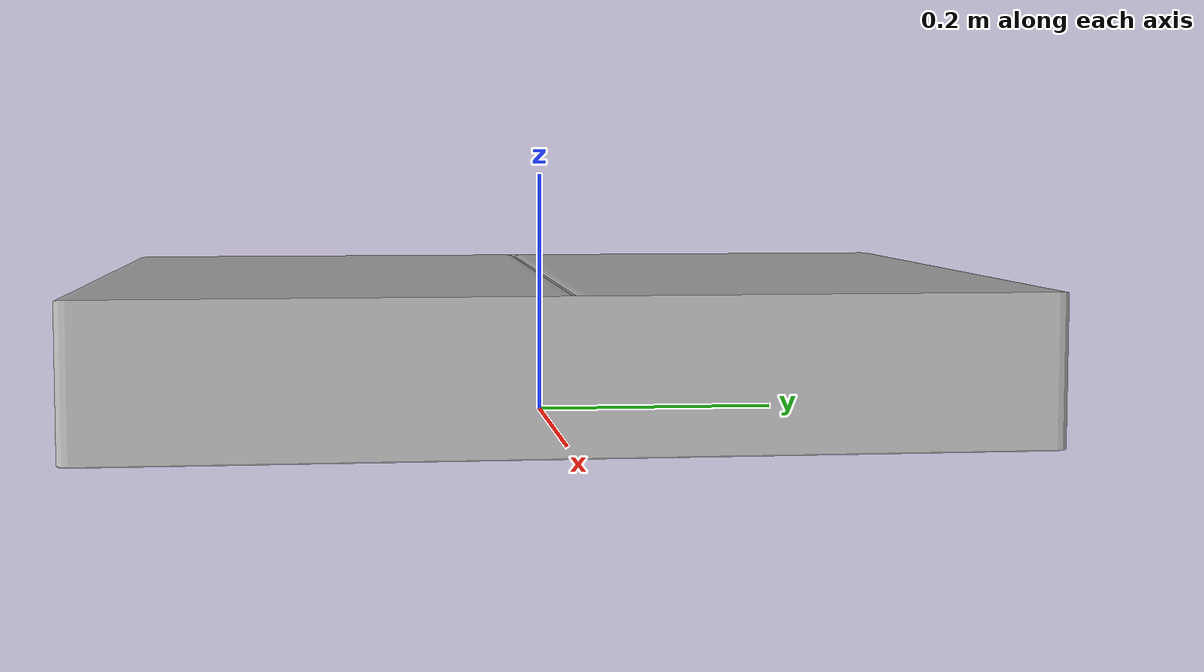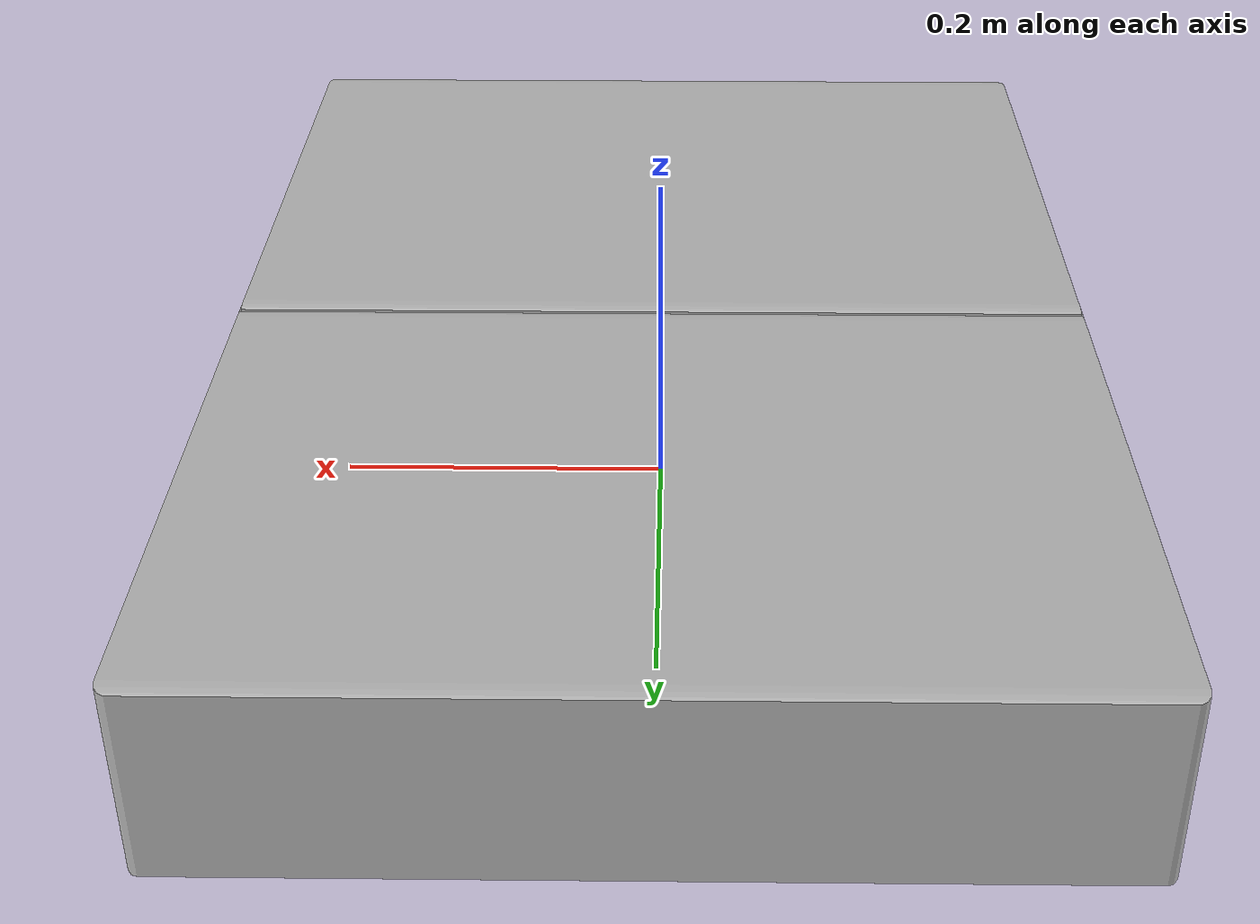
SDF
<?xml version="1.0" ?>
<sdf version="1.6">
  <model name="closed_box">
    <static>true</static>
    <link name="link">
      <visual name="visual">
        <geometry>
          <mesh>
            <scale>1.1 1.8 0.25</scale>
            <uri>model://closed_box_ariac/meshes/closed_box.obj</uri>
          </mesh>
        </geometry>
        <plugin name="toggle" filename="libToggleVisualPlugin.so">
          <initially_visible>false</initially_visible>
          <topic>~/drone_box_visual_toggle</topic>
        </plugin>
      </visual>
    </link>
  </model>
</sdf>
